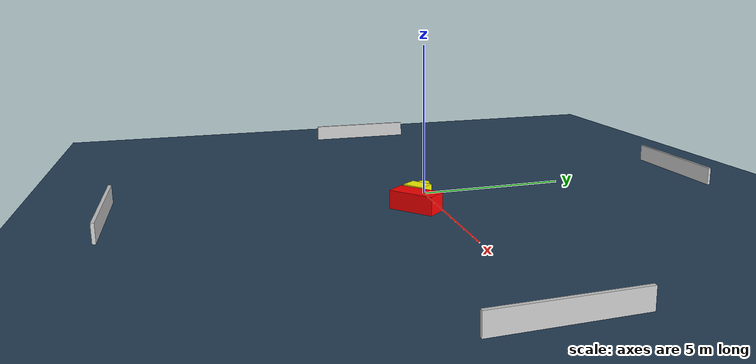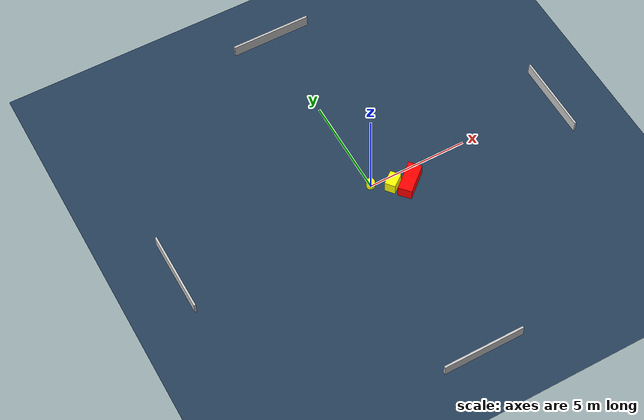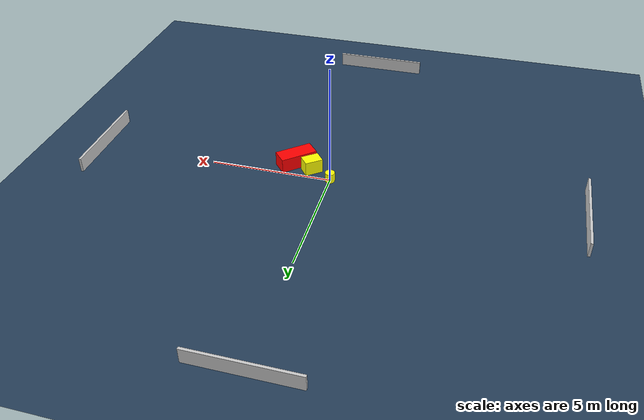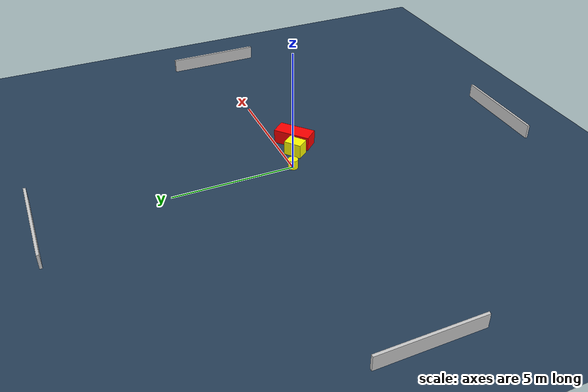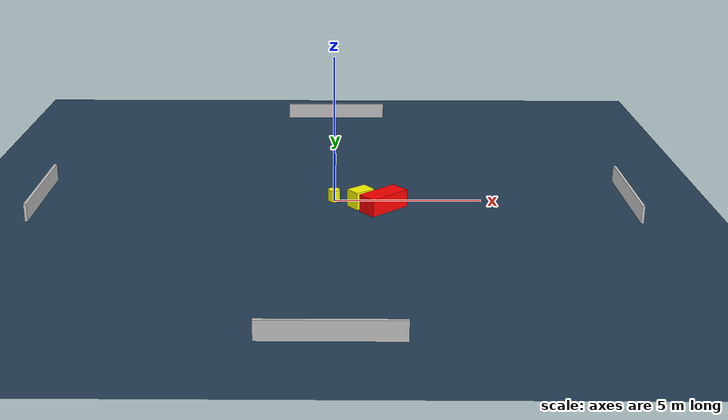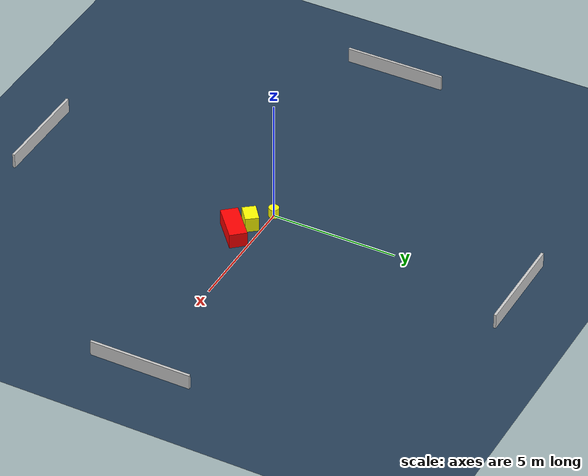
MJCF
<?xml version="1.0" ?>
<mujoco model="generated_environment">
  <option timestep="0.01" integrator="RK4" cone="elliptic"/>
  <default>
    <geom density="1"/>
  </default>
  <asset>
    <texture builtin="gradient" height="3072" name="skybox" rgb1="0.3 0.5 0.7" rgb2="0 0 0" type="skybox" width="512"/>
    <texture builtin="checker" height="300" name="groundplane" rgb1="0.2 0.3 0.4" rgb2="0.1 0.2 0.3" type="2d" width="300"/>
    <material name="groundplane" reflectance="0.2" texrepeat="5 5" texture="groundplane"/>
  </asset>
  <worldbody>
    <light dir="0 0 -1" directional="true" pos="0 0 1.5"/>
    <geom condim="3" friction="0.5 0.005 0.001" material="groundplane" name="floor" pos="0 0 0" size="0 0 0.05" type="plane"/>
    <body name="walls">
      <geom name="wall_1" condim="4" pos="-10.0 0.0 0.3" rgba="0.800000011920929 0.800000011920929 0.800000011920929 1.0" size="0.05 2.0 0.3" type="box"/>
      <geom name="wall_2" condim="4" pos="10.0 0.0 0.3" rgba="0.800000011920929 0.800000011920929 0.800000011920929 1.0" size="0.05 2.0 0.3" type="box"/>
      <geom name="wall_3" condim="4" pos="0.0 -10.0 0.3" rgba="0.800000011920929 0.800000011920929 0.800000011920929 1.0" size="2.0 0.05 0.3" type="box"/>
      <geom name="wall_4" condim="4" pos="0.0 10.0 0.3" rgba="0.800000011920929 0.800000011920929 0.800000011920929 1.0" size="2.0 0.05 0.3" type="box"/>
    </body>
    <body name="robot">
      <joint name="joint_x" type="slide" pos="0 0 0" axis="1 0 0"/>
      <joint name="joint_y" type="slide" pos="0 0 0" axis="0 1 0"/>
      <geom name="robot" type="cylinder" pos="0.0 0.0 0.2" size="0.2 0.2 0.0" mass="5.0" friction="1.0 0.005 0.0001" condim="4" rgba="1.0 1.0 0.0 1.0"/>
    </body>
    <body name="obstacle_1_movable">
      <geom name="obstacle_1_movable" condim="4" pos="0.9014849035767714 -0.4923550715070479 0.3" euler="0 0 38.12896179326725" friction="0.0 0.005 0.001" rgba="1.0 1.0 0.0 1.0" size="0.3689793560188631 0.2645170120690259 0.3" type="box" mass="0.1"/>
      <joint type="free"/>
    </body>
    <body name="obstacle_2_static">
      <geom name="obstacle_2_static" condim="4" pos="1.654418156305907 -0.7862662032784279 0.3" euler="0 0 221.41304076580698" friction="0.0 0.005 0.001" rgba="1.0 0.0 0.0 1.0" size="0.7699499901278581 0.3396690053700099 0.3" type="box"/>
    </body>
  </worldbody>
  <actuator>
    <motor name="actuator_x" joint="joint_x" gear="1" ctrlrange="-1 1"/>
    <motor name="actuator_y" joint="joint_y" gear="1" ctrlrange="-1 1"/>
  </actuator>
</mujoco>
